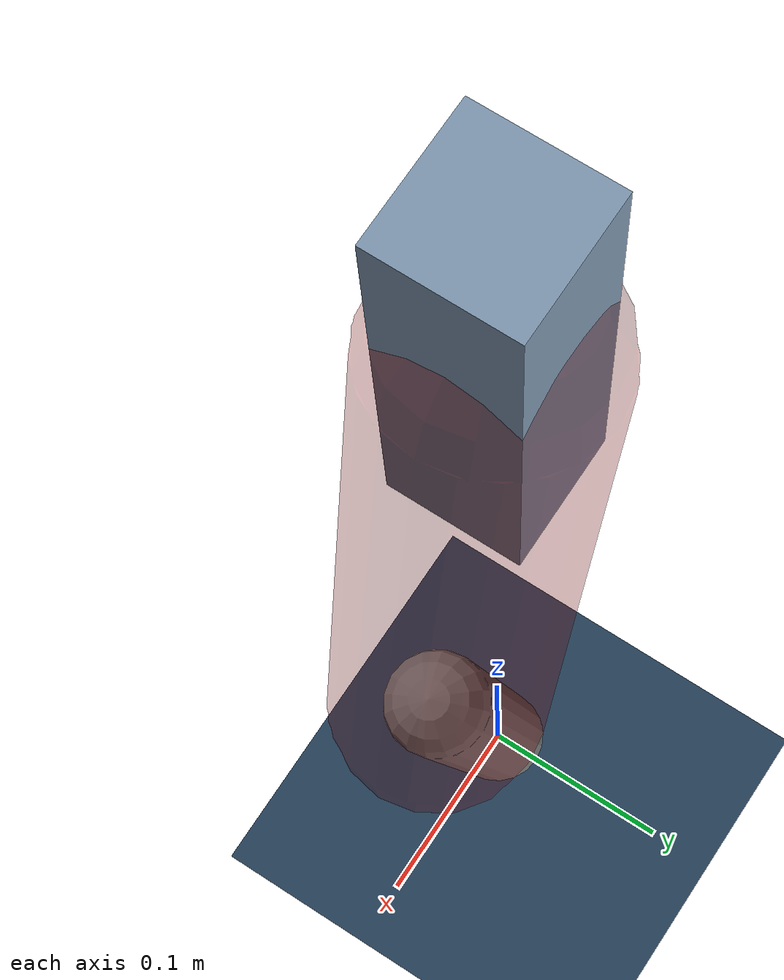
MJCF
<mujoco model="Hopper2D">
	<compiler inertiafromgeom="true" angle="radian" />
	<option timestep="0.001" integrator="implicit" cone="elliptic" solver="Newton" tolerance="1e-10" />

	<default>
		<geom contype="1" conaffinity="1" condim="3" friction="2 0.005 0.0001" solref="0.005 1" />
		<joint limited="true" damping="0.1" />
	</default>

	<asset>
		<texture name="skybox" type="skybox" builtin="gradient" rgb1=".4 .6 .8" rgb2="0 0 0" width="800" height="800" />
		<texture name="grid" type="2d" builtin="checker" rgb1=".1 .2 .3" rgb2=".2 .3 .4" width="300" height="300" mark="edge" markrgb=".2 .3 .4" />
		<material name="ground" texture="grid" texrepeat="1 1" texuniform="true" reflectance="0.1" />
		<material name="leg" rgba="0.5 0.6 0.7 1" />
	</asset>

	<worldbody>

		<geom name="floor" type="plane" size="5 5 0.25" material="ground" />

		<light directional="false" diffuse="0.8 0.8 0.8" specular="0.3 0.3 0.3" pos="0 0 2" dir="0 0 -1" />
		<light mode="targetbodycom" target="base" directional="false" diffuse="0.8 0.8 0.8" specular="0.3 0.3 0.3" pos="0 0 2" dir="0 0 -1" />

		<camera name="fixed" pos="0 -2 1" xyaxes="1 0 0 0 0 1" />
		<camera name="tracking" mode="trackcom" pos="0 -3 1" />

		<body name="root" pos="0 0 0.5123435553323155">
			<joint name="slide_x" type="slide" axis="1 0 0" range="-100 100" />
			<joint name="slide_z" type="slide" axis="0 0 1" range="0 10" />

			<body name="base" pos="0 0 0">
				<geom name="torso" type="box" size="0.03 0.03 0.1" mass="1.86" material="leg" />

				<body name="link1" pos="0 0 0" euler="0 1.4004328436264493 0">
					<joint type="hinge" axis="0 -1 0" pos="0 0 0" name="hinge1" limited="true" range="-3.14 3.14" stiffness="0" damping="0.1" />
					<geom name="thigh" type="capsule" fromto="0 0 0 0.29703211381309746 0 0" size="0.05" rgba="0.5 0 0 0.3" mass="0.9806867072953632" />

					<body name="link2" pos="0.29703211381309746 0 0" euler="0 0.39577592471661666 0">
						<joint type="hinge" axis="0 -1 0" pos="0 0 0" name="hinge2" limited="true" range="-3.14 3.14" stiffness="0" damping="0.1" />
						<geom name="shank" type="capsule" fromto="0 0 0 0.22531144151921806 0 0" size="0.025" mass="0.42208029736729624" />

					</body>
				</body>
			</body>
		</body>
	</worldbody>

	<actuator>
		<motor name="torque1" joint="hinge1" ctrlrange="-9.643312755391255 9.643312755391255" ctrllimited="true" gear="1" />
		<motor name="torque2" joint="hinge2" ctrlrange="-119.22247601514577 119.22247601514577" ctrllimited="true" gear="1" />
	</actuator>
</mujoco>
